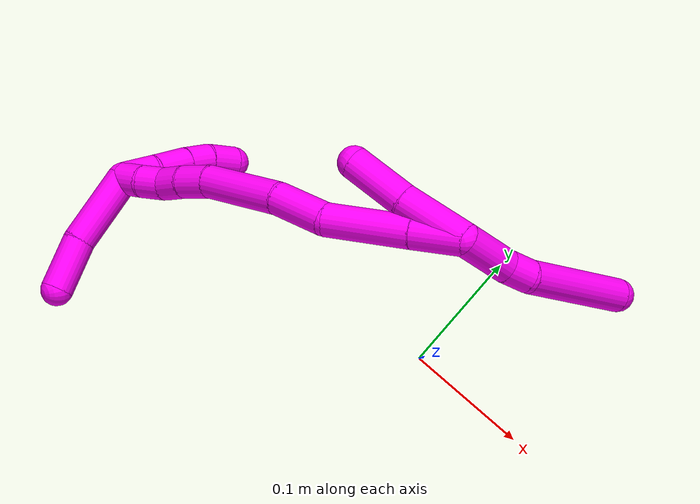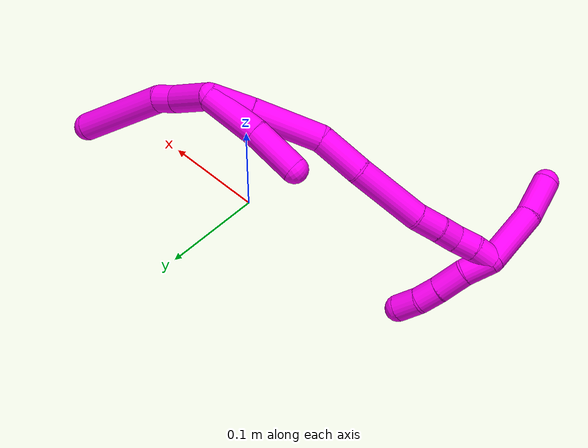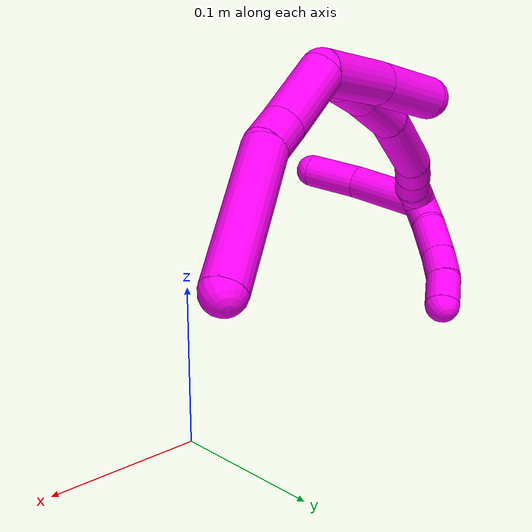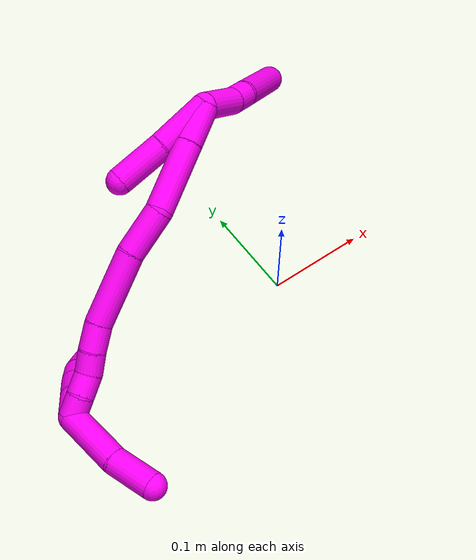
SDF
<sdf version="1.7">
 <world name="default">
  <model name="10">
   <static>0</static>
   <link name="10">
    <collision name="collision-cylinder-e_1_2_8">
     <pose>0.008125 -0.011751 -0.015628 2.49686 0.393814 1.07679</pose>
     <geometry><cylinder><radius>0.0125</radius><length>0.042347</length></cylinder></geometry>
     <surface>
      <friction><ode><mu>1.16</mu><mu2>1.16</mu2><slip1>0</slip1><slip2>0</slip2></ode></friction>
      <contact><ode><kp>1e+06</kp><kd>1</kd><max_vel>0</max_vel><min_depth>0.001</min_depth></ode></contact>
     </surface>
    </collision>
    <visual name="visual-cylinder-e_1_2_8">
     <pose>0.008125 -0.011751 -0.015628 2.49686 0.393814 1.07679</pose>
     <geometry><cylinder><radius>0.0125</radius><length>0.042347</length></cylinder></geometry>
     <material><ambient>1 0 0.964706 1</ambient></material>
    </visual>
    <collision name="collision-cylinder-e_2_8_9">
     <pose>0.021169 -0.027382 -0.039122 2.68335 0.511192 1.68431</pose>
     <geometry><cylinder><radius>0.0125</radius><length>0.020114</length></cylinder></geometry>
     <surface>
      <friction><ode><mu>1.16</mu><mu2>1.16</mu2><slip1>0</slip1><slip2>0</slip2></ode></friction>
      <contact><ode><kp>1e+06</kp><kd>1</kd><max_vel>0</max_vel><min_depth>0.001</min_depth></ode></contact>
     </surface>
    </collision>
    <visual name="visual-cylinder-e_2_8_9">
     <pose>0.021169 -0.027382 -0.039122 2.68335 0.511192 1.68431</pose>
     <geometry><cylinder><radius>0.0125</radius><length>0.020114</length></cylinder></geometry>
     <material><ambient>1 0 0.964706 1</ambient></material>
    </visual>
    <collision name="collision-cylinder-e_3_9_6">
     <pose>0.035334 -0.04758 -0.086536 2.75026 0.212811 0.988544</pose>
     <geometry><cylinder><radius>0.0125</radius><length>0.087539</length></cylinder></geometry>
     <surface>
      <friction><ode><mu>1.16</mu><mu2>1.16</mu2><slip1>0</slip1><slip2>0</slip2></ode></friction>
      <contact><ode><kp>1e+06</kp><kd>1</kd><max_vel>0</max_vel><min_depth>0.001</min_depth></ode></contact>
     </surface>
    </collision>
    <visual name="visual-cylinder-e_3_9_6">
     <pose>0.035334 -0.04758 -0.086536 2.75026 0.212811 0.988544</pose>
     <geometry><cylinder><radius>0.0125</radius><length>0.087539</length></cylinder></geometry>
     <material><ambient>1 0 0.964706 1</ambient></material>
    </visual>
    <collision name="collision-cylinder-e_1_2_10">
     <pose>-0.024459 0.002403 0.009614 -0.244892 -1.18586 0.165462</pose>
     <geometry><cylinder><radius>0.0125</radius><length>0.05278</length></cylinder></geometry>
     <surface>
      <friction><ode><mu>1.16</mu><mu2>1.16</mu2><slip1>0</slip1><slip2>0</slip2></ode></friction>
      <contact><ode><kp>1e+06</kp><kd>1</kd><max_vel>0</max_vel><min_depth>0.001</min_depth></ode></contact>
     </surface>
    </collision>
    <visual name="visual-cylinder-e_1_2_10">
     <pose>-0.024459 0.002403 0.009614 -0.244892 -1.18586 0.165462</pose>
     <geometry><cylinder><radius>0.0125</radius><length>0.05278</length></cylinder></geometry>
     <material><ambient>1 0 0.964706 1</ambient></material>
    </visual>
    <collision name="collision-cylinder-e_2_10_5">
     <pose>-0.0715 0.007417 0.025602 -0.388886 -1.27472 0.289594</pose>
     <geometry><cylinder><radius>0.0125</radius><length>0.04722</length></cylinder></geometry>
     <surface>
      <friction><ode><mu>1.16</mu><mu2>1.16</mu2><slip1>0</slip1><slip2>0</slip2></ode></friction>
      <contact><ode><kp>1e+06</kp><kd>1</kd><max_vel>0</max_vel><min_depth>0.001</min_depth></ode></contact>
     </surface>
    </collision>
    <visual name="visual-cylinder-e_2_10_5">
     <pose>-0.0715 0.007417 0.025602 -0.388886 -1.27472 0.289594</pose>
     <geometry><cylinder><radius>0.0125</radius><length>0.04722</length></cylinder></geometry>
     <material><ambient>1 0 0.964706 1</ambient></material>
    </visual>
    <collision name="collision-cylinder-e_1_2_11">
     <pose>-0.015041 -0.004383 0.011516 0.363686 -0.884419 -0.173685</pose>
     <geometry><cylinder><radius>0.0125</radius><length>0.038888</length></cylinder></geometry>
     <surface>
      <friction><ode><mu>1.16</mu><mu2>1.16</mu2><slip1>0</slip1><slip2>0</slip2></ode></friction>
      <contact><ode><kp>1e+06</kp><kd>1</kd><max_vel>0</max_vel><min_depth>0.001</min_depth></ode></contact>
     </surface>
    </collision>
    <visual name="visual-cylinder-e_1_2_11">
     <pose>-0.015041 -0.004383 0.011516 0.363686 -0.884419 -0.173685</pose>
     <geometry><cylinder><radius>0.0125</radius><length>0.038888</length></cylinder></geometry>
     <material><ambient>1 0 0.964706 1</ambient></material>
    </visual>
    <collision name="collision-cylinder-e_2_11_12">
     <pose>-0.056037 -0.016611 0.041296 0.405694 -0.917262 -0.202409</pose>
     <geometry><cylinder><radius>0.0125</radius><length>0.065385</length></cylinder></geometry>
     <surface>
      <friction><ode><mu>1.16</mu><mu2>1.16</mu2><slip1>0</slip1><slip2>0</slip2></ode></friction>
      <contact><ode><kp>1e+06</kp><kd>1</kd><max_vel>0</max_vel><min_depth>0.001</min_depth></ode></contact>
     </surface>
    </collision>
    <visual name="visual-cylinder-e_2_11_12">
     <pose>-0.056037 -0.016611 0.041296 0.405694 -0.917262 -0.202409</pose>
     <geometry><cylinder><radius>0.0125</radius><length>0.065385</length></cylinder></geometry>
     <material><ambient>1 0 0.964706 1</ambient></material>
    </visual>
    <collision name="collision-cylinder-e_3_12_13">
     <pose>-0.10263 -0.028314 0.065461 0.57897 -1.24158 -0.419715</pose>
     <geometry><cylinder><radius>0.0125</radius><length>0.043616</length></cylinder></geometry>
     <surface>
      <friction><ode><mu>1.16</mu><mu2>1.16</mu2><slip1>0</slip1><slip2>0</slip2></ode></friction>
      <contact><ode><kp>1e+06</kp><kd>1</kd><max_vel>0</max_vel><min_depth>0.001</min_depth></ode></contact>
     </surface>
    </collision>
    <visual name="visual-cylinder-e_3_12_13">
     <pose>-0.10263 -0.028314 0.065461 0.57897 -1.24158 -0.419715</pose>
     <geometry><cylinder><radius>0.0125</radius><length>0.043616</length></cylinder></geometry>
     <material><ambient>1 0 0.964706 1</ambient></material>
    </visual>
    <collision name="collision-cylinder-e_4_13_14">
     <pose>-0.153422 -0.043898 0.080202 0.924878 -1.11763 -0.604322</pose>
     <geometry><cylinder><radius>0.0125</radius><length>0.067081</length></cylinder></geometry>
     <surface>
      <friction><ode><mu>1.16</mu><mu2>1.16</mu2><slip1>0</slip1><slip2>0</slip2></ode></friction>
      <contact><ode><kp>1e+06</kp><kd>1</kd><max_vel>0</max_vel><min_depth>0.001</min_depth></ode></contact>
     </surface>
    </collision>
    <visual name="visual-cylinder-e_4_13_14">
     <pose>-0.153422 -0.043898 0.080202 0.924878 -1.11763 -0.604322</pose>
     <geometry><cylinder><radius>0.0125</radius><length>0.067081</length></cylinder></geometry>
     <material><ambient>1 0 0.964706 1</ambient></material>
    </visual>
    <collision name="collision-cylinder-e_5_14_15">
     <pose>-0.193404 -0.061674 0.093528 0.932623 -0.916815 -0.486904</pose>
     <geometry><cylinder><radius>0.0125</radius><length>0.024763</length></cylinder></geometry>
     <surface>
      <friction><ode><mu>1.16</mu><mu2>1.16</mu2><slip1>0</slip1><slip2>0</slip2></ode></friction>
      <contact><ode><kp>1e+06</kp><kd>1</kd><max_vel>0</max_vel><min_depth>0.001</min_depth></ode></contact>
     </surface>
    </collision>
    <visual name="visual-cylinder-e_5_14_15">
     <pose>-0.193404 -0.061674 0.093528 0.932623 -0.916815 -0.486904</pose>
     <geometry><cylinder><radius>0.0125</radius><length>0.024763</length></cylinder></geometry>
     <material><ambient>1 0 0.964706 1</ambient></material>
    </visual>
    <collision name="collision-cylinder-e_6_15_16">
     <pose>-0.210885 -0.07346 0.101019 1.08847 -0.868712 -0.547419</pose>
     <geometry><cylinder><radius>0.0125</radius><length>0.020051</length></cylinder></geometry>
     <surface>
      <friction><ode><mu>1.16</mu><mu2>1.16</mu2><slip1>0</slip1><slip2>0</slip2></ode></friction>
      <contact><ode><kp>1e+06</kp><kd>1</kd><max_vel>0</max_vel><min_depth>0.001</min_depth></ode></contact>
     </surface>
    </collision>
    <visual name="visual-cylinder-e_6_15_16">
     <pose>-0.210885 -0.07346 0.101019 1.08847 -0.868712 -0.547419</pose>
     <geometry><cylinder><radius>0.0125</radius><length>0.020051</length></cylinder></geometry>
     <material><ambient>1 0 0.964706 1</ambient></material>
    </visual>
    <collision name="collision-cylinder-e_7_16_17">
     <pose>-0.226818 -0.08265 0.108589 0.647489 -0.965643 -0.348231</pose>
     <geometry><cylinder><radius>0.0125</radius><length>0.020132</length></cylinder></geometry>
     <surface>
      <friction><ode><mu>1.16</mu><mu2>1.16</mu2><slip1>0</slip1><slip2>0</slip2></ode></friction>
      <contact><ode><kp>1e+06</kp><kd>1</kd><max_vel>0</max_vel><min_depth>0.001</min_depth></ode></contact>
     </surface>
    </collision>
    <visual name="visual-cylinder-e_7_16_17">
     <pose>-0.226818 -0.08265 0.108589 0.647489 -0.965643 -0.348231</pose>
     <geometry><cylinder><radius>0.0125</radius><length>0.020132</length></cylinder></geometry>
     <material><ambient>1 0 0.964706 1</ambient></material>
    </visual>
    <collision name="collision-cylinder-e_8_17_1">
     <pose>-0.243769 -0.090124 0.116235 0.917318 -1.04231 -0.552459</pose>
     <geometry><cylinder><radius>0.0125</radius><length>0.020084</length></cylinder></geometry>
     <surface>
      <friction><ode><mu>1.16</mu><mu2>1.16</mu2><slip1>0</slip1><slip2>0</slip2></ode></friction>
      <contact><ode><kp>1e+06</kp><kd>1</kd><max_vel>0</max_vel><min_depth>0.001</min_depth></ode></contact>
     </surface>
    </collision>
    <visual name="visual-cylinder-e_8_17_1">
     <pose>-0.243769 -0.090124 0.116235 0.917318 -1.04231 -0.552459</pose>
     <geometry><cylinder><radius>0.0125</radius><length>0.020084</length></cylinder></geometry>
     <material><ambient>1 0 0.964706 1</ambient></material>
    </visual>
    <collision name="collision-cylinder-e_1_1_18">
     <pose>-0.25083 -0.093507 0.105844 -3.09432 0.118887 -2.38532</pose>
     <geometry><cylinder><radius>0.0125</radius><length>0.02716</length></cylinder></geometry>
     <surface>
      <friction><ode><mu>1.16</mu><mu2>1.16</mu2><slip1>0</slip1><slip2>0</slip2></ode></friction>
      <contact><ode><kp>1e+06</kp><kd>1</kd><max_vel>0</max_vel><min_depth>0.001</min_depth></ode></contact>
     </surface>
    </collision>
    <visual name="visual-cylinder-e_1_1_18">
     <pose>-0.25083 -0.093507 0.105844 -3.09432 0.118887 -2.38532</pose>
     <geometry><cylinder><radius>0.0125</radius><length>0.02716</length></cylinder></geometry>
     <material><ambient>1 0 0.964706 1</ambient></material>
    </visual>
    <collision name="collision-cylinder-e_2_18_19">
     <pose>-0.249762 -0.094096 0.078105 3.05592 -0.037904 -0.832717</pose>
     <geometry><cylinder><radius>0.0125</radius><length>0.028666</length></cylinder></geometry>
     <surface>
      <friction><ode><mu>1.16</mu><mu2>1.16</mu2><slip1>0</slip1><slip2>0</slip2></ode></friction>
      <contact><ode><kp>1e+06</kp><kd>1</kd><max_vel>0</max_vel><min_depth>0.001</min_depth></ode></contact>
     </surface>
    </collision>
    <visual name="visual-cylinder-e_2_18_19">
     <pose>-0.249762 -0.094096 0.078105 3.05592 -0.037904 -0.832717</pose>
     <geometry><cylinder><radius>0.0125</radius><length>0.028666</length></cylinder></geometry>
     <material><ambient>1 0 0.964706 1</ambient></material>
    </visual>
    <collision name="collision-cylinder-e_3_19_20">
     <pose>-0.249981 -0.096653 0.053494 3.01353 0.031082 0.475609</pose>
     <geometry><cylinder><radius>0.0125</radius><length>0.020863</length></cylinder></geometry>
     <surface>
      <friction><ode><mu>1.16</mu><mu2>1.16</mu2><slip1>0</slip1><slip2>0</slip2></ode></friction>
      <contact><ode><kp>1e+06</kp><kd>1</kd><max_vel>0</max_vel><min_depth>0.001</min_depth></ode></contact>
     </surface>
    </collision>
    <visual name="visual-cylinder-e_3_19_20">
     <pose>-0.249981 -0.096653 0.053494 3.01353 0.031082 0.475609</pose>
     <geometry><cylinder><radius>0.0125</radius><length>0.020863</length></cylinder></geometry>
     <material><ambient>1 0 0.964706 1</ambient></material>
    </visual>
    <collision name="collision-cylinder-e_4_20_4">
     <pose>-0.2477 -0.101419 0.032188 2.838 0.168748 1.01009</pose>
     <geometry><cylinder><radius>0.0125</radius><length>0.023311</length></cylinder></geometry>
     <surface>
      <friction><ode><mu>1.16</mu><mu2>1.16</mu2><slip1>0</slip1><slip2>0</slip2></ode></friction>
      <contact><ode><kp>1e+06</kp><kd>1</kd><max_vel>0</max_vel><min_depth>0.001</min_depth></ode></contact>
     </surface>
    </collision>
    <visual name="visual-cylinder-e_4_20_4">
     <pose>-0.2477 -0.101419 0.032188 2.838 0.168748 1.01009</pose>
     <geometry><cylinder><radius>0.0125</radius><length>0.023311</length></cylinder></geometry>
     <material><ambient>1 0 0.964706 1</ambient></material>
    </visual>
    <collision name="collision-cylinder-e_1_1_21">
     <pose>-0.244858 -0.111886 0.141486 0.674832 0.260935 0.092002</pose>
     <geometry><cylinder><radius>0.0125</radius><length>0.058783</length></cylinder></geometry>
     <surface>
      <friction><ode><mu>1.16</mu><mu2>1.16</mu2><slip1>0</slip1><slip2>0</slip2></ode></friction>
      <contact><ode><kp>1e+06</kp><kd>1</kd><max_vel>0</max_vel><min_depth>0.001</min_depth></ode></contact>
     </surface>
    </collision>
    <visual name="visual-cylinder-e_1_1_21">
     <pose>-0.244858 -0.111886 0.141486 0.674832 0.260935 0.092002</pose>
     <geometry><cylinder><radius>0.0125</radius><length>0.058783</length></cylinder></geometry>
     <material><ambient>1 0 0.964706 1</ambient></material>
    </visual>
    <collision name="collision-cylinder-e_2_21_3">
     <pose>-0.228661 -0.142684 0.177075 0.771797 0.43125 0.177502</pose>
     <geometry><cylinder><radius>0.0125</radius><length>0.041217</length></cylinder></geometry>
     <surface>
      <friction><ode><mu>1.16</mu><mu2>1.16</mu2><slip1>0</slip1><slip2>0</slip2></ode></friction>
      <contact><ode><kp>1e+06</kp><kd>1</kd><max_vel>0</max_vel><min_depth>0.001</min_depth></ode></contact>
     </surface>
    </collision>
    <visual name="visual-cylinder-e_2_21_3">
     <pose>-0.228661 -0.142684 0.177075 0.771797 0.43125 0.177502</pose>
     <geometry><cylinder><radius>0.0125</radius><length>0.041217</length></cylinder></geometry>
     <material><ambient>1 0 0.964706 1</ambient></material>
    </visual>
    <collision name="collision-sphere-3">
     <pose>-0.220046 -0.155741 0.190492 0 -0 0</pose>
     <geometry><sphere><radius>0.0125</radius></sphere></geometry>
     <surface>
      <friction><ode><mu>1.16</mu><mu2>1.16</mu2><slip1>0</slip1><slip2>0</slip2></ode></friction>
      <contact><ode><kp>1e+06</kp><kd>1</kd><max_vel>0</max_vel><min_depth>0.001</min_depth></ode></contact>
     </surface>
    </collision>
    <visual name="visual-sphere-3">
     <pose>-0.220046 -0.155741 0.190492 0 -0 0</pose>
     <geometry><sphere><radius>0.0125</radius></sphere></geometry>
     <material><ambient>1 0 0.964706 1</ambient></material>
    </visual>
    <collision name="collision-sphere-21">
     <pose>-0.237276 -0.129627 0.163658 0 -0 0</pose>
     <geometry><sphere><radius>0.0125</radius></sphere></geometry>
     <surface>
      <friction><ode><mu>1.16</mu><mu2>1.16</mu2><slip1>0</slip1><slip2>0</slip2></ode></friction>
      <contact><ode><kp>1e+06</kp><kd>1</kd><max_vel>0</max_vel><min_depth>0.001</min_depth></ode></contact>
     </surface>
    </collision>
    <visual name="visual-sphere-21">
     <pose>-0.237276 -0.129627 0.163658 0 -0 0</pose>
     <geometry><sphere><radius>0.0125</radius></sphere></geometry>
     <material><ambient>1 0 0.964706 1</ambient></material>
    </visual>
    <collision name="collision-sphere-4">
     <pose>-0.245742 -0.104854 0.021224 0 -0 0</pose>
     <geometry><sphere><radius>0.0125</radius></sphere></geometry>
     <surface>
      <friction><ode><mu>1.16</mu><mu2>1.16</mu2><slip1>0</slip1><slip2>0</slip2></ode></friction>
      <contact><ode><kp>1e+06</kp><kd>1</kd><max_vel>0</max_vel><min_depth>0.001</min_depth></ode></contact>
     </surface>
    </collision>
    <visual name="visual-sphere-4">
     <pose>-0.245742 -0.104854 0.021224 0 -0 0</pose>
     <geometry><sphere><radius>0.0125</radius></sphere></geometry>
     <material><ambient>1 0 0.964706 1</ambient></material>
    </visual>
    <collision name="collision-sphere-20">
     <pose>-0.249657 -0.097984 0.043152 0 -0 0</pose>
     <geometry><sphere><radius>0.0125</radius></sphere></geometry>
     <surface>
      <friction><ode><mu>1.16</mu><mu2>1.16</mu2><slip1>0</slip1><slip2>0</slip2></ode></friction>
      <contact><ode><kp>1e+06</kp><kd>1</kd><max_vel>0</max_vel><min_depth>0.001</min_depth></ode></contact>
     </surface>
    </collision>
    <visual name="visual-sphere-20">
     <pose>-0.249657 -0.097984 0.043152 0 -0 0</pose>
     <geometry><sphere><radius>0.0125</radius></sphere></geometry>
     <material><ambient>1 0 0.964706 1</ambient></material>
    </visual>
    <collision name="collision-sphere-5">
     <pose>-0.094083 0.010029 0.031976 0 -0 0</pose>
     <geometry><sphere><radius>0.0125</radius></sphere></geometry>
     <surface>
      <friction><ode><mu>1.16</mu><mu2>1.16</mu2><slip1>0</slip1><slip2>0</slip2></ode></friction>
      <contact><ode><kp>1e+06</kp><kd>1</kd><max_vel>0</max_vel><min_depth>0.001</min_depth></ode></contact>
     </surface>
    </collision>
    <visual name="visual-sphere-5">
     <pose>-0.094083 0.010029 0.031976 0 -0 0</pose>
     <geometry><sphere><radius>0.0125</radius></sphere></geometry>
     <material><ambient>1 0 0.964706 1</ambient></material>
    </visual>
    <collision name="collision-sphere-10">
     <pose>-0.048917 0.004805 0.019227 0 -0 0</pose>
     <geometry><sphere><radius>0.0125</radius></sphere></geometry>
     <surface>
      <friction><ode><mu>1.16</mu><mu2>1.16</mu2><slip1>0</slip1><slip2>0</slip2></ode></friction>
      <contact><ode><kp>1e+06</kp><kd>1</kd><max_vel>0</max_vel><min_depth>0.001</min_depth></ode></contact>
     </surface>
    </collision>
    <visual name="visual-sphere-10">
     <pose>-0.048917 0.004805 0.019227 0 -0 0</pose>
     <geometry><sphere><radius>0.0125</radius></sphere></geometry>
     <material><ambient>1 0 0.964706 1</ambient></material>
    </visual>
    <collision name="collision-sphere-6">
     <pose>0.044578 -0.063898 -0.126084 0 -0 0</pose>
     <geometry><sphere><radius>0.0125</radius></sphere></geometry>
     <surface>
      <friction><ode><mu>1.16</mu><mu2>1.16</mu2><slip1>0</slip1><slip2>0</slip2></ode></friction>
      <contact><ode><kp>1e+06</kp><kd>1</kd><max_vel>0</max_vel><min_depth>0.001</min_depth></ode></contact>
     </surface>
    </collision>
    <visual name="visual-sphere-6">
     <pose>0.044578 -0.063898 -0.126084 0 -0 0</pose>
     <geometry><sphere><radius>0.0125</radius></sphere></geometry>
     <material><ambient>1 0 0.964706 1</ambient></material>
    </visual>
    <collision name="collision-sphere-9">
     <pose>0.026089 -0.031262 -0.046988 0 -0 0</pose>
     <geometry><sphere><radius>0.0125</radius></sphere></geometry>
     <surface>
      <friction><ode><mu>1.16</mu><mu2>1.16</mu2><slip1>0</slip1><slip2>0</slip2></ode></friction>
      <contact><ode><kp>1e+06</kp><kd>1</kd><max_vel>0</max_vel><min_depth>0.001</min_depth></ode></contact>
     </surface>
    </collision>
    <visual name="visual-sphere-9">
     <pose>0.026089 -0.031262 -0.046988 0 -0 0</pose>
     <geometry><sphere><radius>0.0125</radius></sphere></geometry>
     <material><ambient>1 0 0.964706 1</ambient></material>
    </visual>
    <collision name="collision-sphere-2">
     <geometry><sphere><radius>0.0125</radius></sphere></geometry>
     <surface>
      <friction><ode><mu>1.16</mu><mu2>1.16</mu2><slip1>0</slip1><slip2>0</slip2></ode></friction>
      <contact><ode><kp>1e+06</kp><kd>1</kd><max_vel>0</max_vel><min_depth>0.001</min_depth></ode></contact>
     </surface>
    </collision>
    <visual name="visual-sphere-2">
     <geometry><sphere><radius>0.0125</radius></sphere></geometry>
     <material><ambient>1 0 0.964706 1</ambient></material>
    </visual>
    <collision name="collision-sphere-19">
     <pose>-0.250305 -0.095321 0.063835 0 -0 0</pose>
     <geometry><sphere><radius>0.0125</radius></sphere></geometry>
     <surface>
      <friction><ode><mu>1.16</mu><mu2>1.16</mu2><slip1>0</slip1><slip2>0</slip2></ode></friction>
      <contact><ode><kp>1e+06</kp><kd>1</kd><max_vel>0</max_vel><min_depth>0.001</min_depth></ode></contact>
     </surface>
    </collision>
    <visual name="visual-sphere-19">
     <pose>-0.250305 -0.095321 0.063835 0 -0 0</pose>
     <geometry><sphere><radius>0.0125</radius></sphere></geometry>
     <material><ambient>1 0 0.964706 1</ambient></material>
    </visual>
    <collision name="collision-sphere-8">
     <pose>0.016249 -0.023502 -0.031255 0 -0 0</pose>
     <geometry><sphere><radius>0.0125</radius></sphere></geometry>
     <surface>
      <friction><ode><mu>1.16</mu><mu2>1.16</mu2><slip1>0</slip1><slip2>0</slip2></ode></friction>
      <contact><ode><kp>1e+06</kp><kd>1</kd><max_vel>0</max_vel><min_depth>0.001</min_depth></ode></contact>
     </surface>
    </collision>
    <visual name="visual-sphere-8">
     <pose>0.016249 -0.023502 -0.031255 0 -0 0</pose>
     <geometry><sphere><radius>0.0125</radius></sphere></geometry>
     <material><ambient>1 0 0.964706 1</ambient></material>
    </visual>
    <collision name="collision-sphere-11">
     <pose>-0.030082 -0.008767 0.023033 0 -0 0</pose>
     <geometry><sphere><radius>0.0125</radius></sphere></geometry>
     <surface>
      <friction><ode><mu>1.16</mu><mu2>1.16</mu2><slip1>0</slip1><slip2>0</slip2></ode></friction>
      <contact><ode><kp>1e+06</kp><kd>1</kd><max_vel>0</max_vel><min_depth>0.001</min_depth></ode></contact>
     </surface>
    </collision>
    <visual name="visual-sphere-11">
     <pose>-0.030082 -0.008767 0.023033 0 -0 0</pose>
     <geometry><sphere><radius>0.0125</radius></sphere></geometry>
     <material><ambient>1 0 0.964706 1</ambient></material>
    </visual>
    <collision name="collision-sphere-12">
     <pose>-0.081993 -0.024456 0.05956 0 -0 0</pose>
     <geometry><sphere><radius>0.0125</radius></sphere></geometry>
     <surface>
      <friction><ode><mu>1.16</mu><mu2>1.16</mu2><slip1>0</slip1><slip2>0</slip2></ode></friction>
      <contact><ode><kp>1e+06</kp><kd>1</kd><max_vel>0</max_vel><min_depth>0.001</min_depth></ode></contact>
     </surface>
    </collision>
    <visual name="visual-sphere-12">
     <pose>-0.081993 -0.024456 0.05956 0 -0 0</pose>
     <geometry><sphere><radius>0.0125</radius></sphere></geometry>
     <material><ambient>1 0 0.964706 1</ambient></material>
    </visual>
    <collision name="collision-sphere-13">
     <pose>-0.123267 -0.032171 0.071363 0 -0 0</pose>
     <geometry><sphere><radius>0.0125</radius></sphere></geometry>
     <surface>
      <friction><ode><mu>1.16</mu><mu2>1.16</mu2><slip1>0</slip1><slip2>0</slip2></ode></friction>
      <contact><ode><kp>1e+06</kp><kd>1</kd><max_vel>0</max_vel><min_depth>0.001</min_depth></ode></contact>
     </surface>
    </collision>
    <visual name="visual-sphere-13">
     <pose>-0.123267 -0.032171 0.071363 0 -0 0</pose>
     <geometry><sphere><radius>0.0125</radius></sphere></geometry>
     <material><ambient>1 0 0.964706 1</ambient></material>
    </visual>
    <collision name="collision-sphere-14">
     <pose>-0.183577 -0.055624 0.089041 0 -0 0</pose>
     <geometry><sphere><radius>0.0125</radius></sphere></geometry>
     <surface>
      <friction><ode><mu>1.16</mu><mu2>1.16</mu2><slip1>0</slip1><slip2>0</slip2></ode></friction>
      <contact><ode><kp>1e+06</kp><kd>1</kd><max_vel>0</max_vel><min_depth>0.001</min_depth></ode></contact>
     </surface>
    </collision>
    <visual name="visual-sphere-14">
     <pose>-0.183577 -0.055624 0.089041 0 -0 0</pose>
     <geometry><sphere><radius>0.0125</radius></sphere></geometry>
     <material><ambient>1 0 0.964706 1</ambient></material>
    </visual>
    <collision name="collision-sphere-15">
     <pose>-0.203231 -0.067724 0.098015 0 -0 0</pose>
     <geometry><sphere><radius>0.0125</radius></sphere></geometry>
     <surface>
      <friction><ode><mu>1.16</mu><mu2>1.16</mu2><slip1>0</slip1><slip2>0</slip2></ode></friction>
      <contact><ode><kp>1e+06</kp><kd>1</kd><max_vel>0</max_vel><min_depth>0.001</min_depth></ode></contact>
     </surface>
    </collision>
    <visual name="visual-sphere-15">
     <pose>-0.203231 -0.067724 0.098015 0 -0 0</pose>
     <geometry><sphere><radius>0.0125</radius></sphere></geometry>
     <material><ambient>1 0 0.964706 1</ambient></material>
    </visual>
    <collision name="collision-sphere-16">
     <pose>-0.21854 -0.079196 0.104022 0 -0 0</pose>
     <geometry><sphere><radius>0.0125</radius></sphere></geometry>
     <surface>
      <friction><ode><mu>1.16</mu><mu2>1.16</mu2><slip1>0</slip1><slip2>0</slip2></ode></friction>
      <contact><ode><kp>1e+06</kp><kd>1</kd><max_vel>0</max_vel><min_depth>0.001</min_depth></ode></contact>
     </surface>
    </collision>
    <visual name="visual-sphere-16">
     <pose>-0.21854 -0.079196 0.104022 0 -0 0</pose>
     <geometry><sphere><radius>0.0125</radius></sphere></geometry>
     <material><ambient>1 0 0.964706 1</ambient></material>
    </visual>
    <collision name="collision-sphere-17">
     <pose>-0.235097 -0.086104 0.113157 0 -0 0</pose>
     <geometry><sphere><radius>0.0125</radius></sphere></geometry>
     <surface>
      <friction><ode><mu>1.16</mu><mu2>1.16</mu2><slip1>0</slip1><slip2>0</slip2></ode></friction>
      <contact><ode><kp>1e+06</kp><kd>1</kd><max_vel>0</max_vel><min_depth>0.001</min_depth></ode></contact>
     </surface>
    </collision>
    <visual name="visual-sphere-17">
     <pose>-0.235097 -0.086104 0.113157 0 -0 0</pose>
     <geometry><sphere><radius>0.0125</radius></sphere></geometry>
     <material><ambient>1 0 0.964706 1</ambient></material>
    </visual>
    <collision name="collision-sphere-1">
     <pose>-0.252441 -0.094144 0.119313 0 -0 0</pose>
     <geometry><sphere><radius>0.0125</radius></sphere></geometry>
     <surface>
      <friction><ode><mu>1.16</mu><mu2>1.16</mu2><slip1>0</slip1><slip2>0</slip2></ode></friction>
      <contact><ode><kp>1e+06</kp><kd>1</kd><max_vel>0</max_vel><min_depth>0.001</min_depth></ode></contact>
     </surface>
    </collision>
    <visual name="visual-sphere-1">
     <pose>-0.252441 -0.094144 0.119313 0 -0 0</pose>
     <geometry><sphere><radius>0.0125</radius></sphere></geometry>
     <material><ambient>1 0 0.964706 1</ambient></material>
    </visual>
    <collision name="collision-sphere-18">
     <pose>-0.249219 -0.09287 0.092375 0 -0 0</pose>
     <geometry><sphere><radius>0.0125</radius></sphere></geometry>
     <surface>
      <friction><ode><mu>1.16</mu><mu2>1.16</mu2><slip1>0</slip1><slip2>0</slip2></ode></friction>
      <contact><ode><kp>1e+06</kp><kd>1</kd><max_vel>0</max_vel><min_depth>0.001</min_depth></ode></contact>
     </surface>
    </collision>
    <visual name="visual-sphere-18">
     <pose>-0.249219 -0.09287 0.092375 0 -0 0</pose>
     <geometry><sphere><radius>0.0125</radius></sphere></geometry>
     <material><ambient>1 0 0.964706 1</ambient></material>
    </visual>
    <inertial>
     <pose>-0.116108 -0.05163 0.047378 0 -0 0</pose>
     <mass>0.75</mass>
     <inertia>
      <ixx>0.000131</ixx>
      <ixy>0</ixy>
      <ixz>0</ixz>
      <iyy>0.000114</iyy>
      <iyz>0</iyz>
      <izz>0.000126</izz>
     </inertia>
    </inertial>
   </link>
   <pose>-0.034915 0.074975 0.232303 0.942503 -0.558006 -0.130721</pose>
  </model>
 </world>
</sdf>
